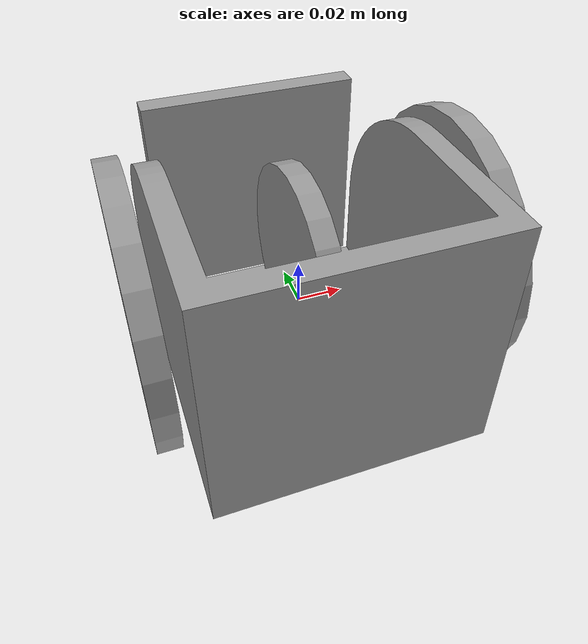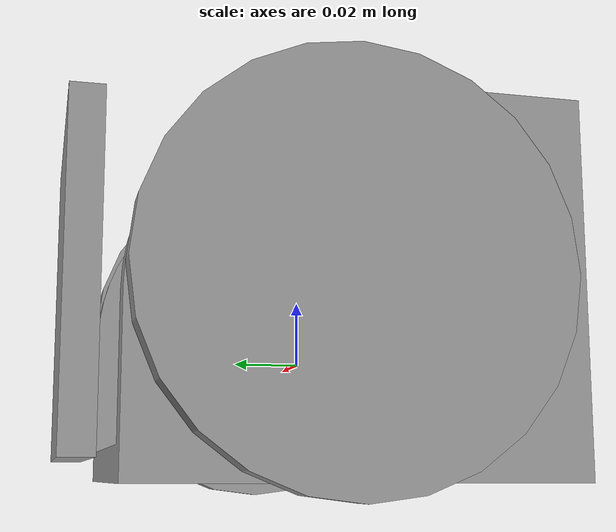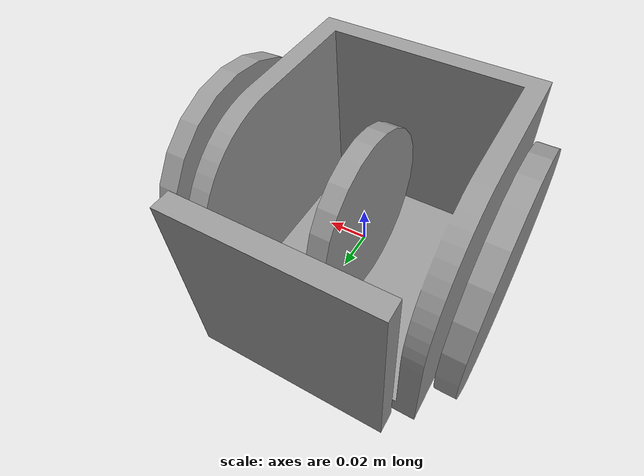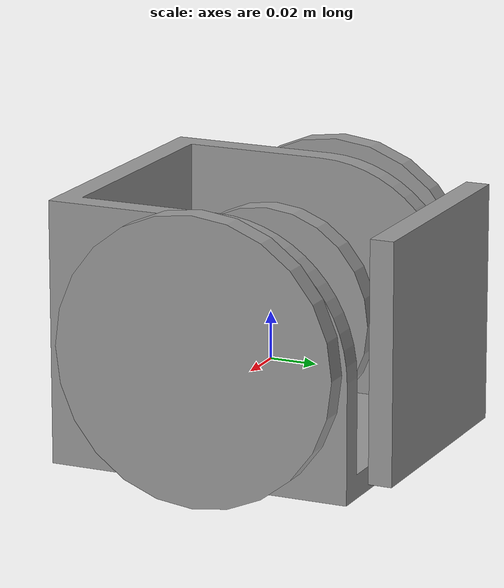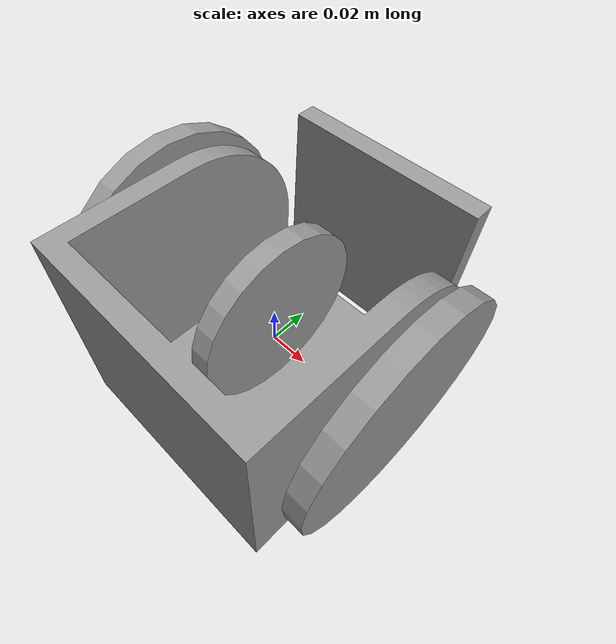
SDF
<?xml version='1.0'?>
<sdf version='1.6'>
  <model name='ditto3'>
    <link name='body'>
      <inertial>
        <mass>5</mass>
        <inertia>
          <ixx>0.166667</ixx>
          <ixy>0</ixy>
          <ixz>0</ixz>
          <iyy>0.166667</iyy>
          <iyz>0</iyz>
          <izz>0.166667</izz>
        </inertia>
        <pose frame=''>0 0 0 0 -0 0</pose>
      </inertial>
      <pose frame=''>0 -0 -0.036667 0 -0 0</pose>
      <gravity>1</gravity>
      <self_collide>0</self_collide>
      <kinematic>0</kinematic>
      <enable_wind>0</enable_wind>
      <visual name='visual'>
        <pose frame=''>0 0 0 0 -0 0</pose>
        <geometry>
          <mesh>
            <uri>/home/xtreme/catkin_ws/src/Graduation CADs/OneDrive-2019-11-22/bodyCorrected.obj</uri>
            <scale>0.001 0.001 0.001</scale>
          </mesh>
        </geometry>
        <material>
          <lighting>1</lighting>
          <script>
            <uri>file://media/materials/scripts/gazebo.material</uri>
            <name>Gazebo/Grey</name>
          </script>
          <shader type='pixel'>
            <normal_map>__default__</normal_map>
          </shader>
          <ambient>0.3 0.3 0.3 1</ambient>
          <diffuse>0.7 0.7 0.7 1</diffuse>
          <specular>0.01 0.01 0.01 1</specular>
          <emissive>0 0 0 1</emissive>
        </material>
        <transparency>0</transparency>
        <cast_shadows>1</cast_shadows>
      </visual>
      <collision name='collision'>
        <laser_retro>0</laser_retro>
        <max_contacts>10</max_contacts>
        <pose frame=''>0 0 0 0 -0 0</pose>
        <geometry>
          <mesh>
            <uri>/home/xtreme/catkin_ws/src/Graduation CADs/OneDrive-2019-11-22/bodyCorrected.obj</uri>
            <scale>0.001 0.001 0.001</scale>
          </mesh>
        </geometry>
        <surface>
          <friction>
            <ode>
              <mu>1</mu>
              <mu2>1</mu2>
              <fdir1>0 0 0</fdir1>
              <slip1>0</slip1>
              <slip2>0</slip2>
            </ode>
            <torsional>
              <coefficient>1</coefficient>
              <patch_radius>0</patch_radius>
              <surface_radius>0</surface_radius>
              <use_patch_radius>1</use_patch_radius>
              <ode>
                <slip>0</slip>
              </ode>
            </torsional>
          </friction>
          <bounce>
            <restitution_coefficient>0</restitution_coefficient>
            <threshold>1e+06</threshold>
          </bounce>
          <contact>
            <collide_without_contact>0</collide_without_contact>
            <collide_without_contact_bitmask>1</collide_without_contact_bitmask>
            <collide_bitmask>1</collide_bitmask>
            <ode>
              <soft_cfm>0</soft_cfm>
              <soft_erp>0.2</soft_erp>
              <kp>1e+13</kp>
              <kd>1</kd>
              <max_vel>0.01</max_vel>
              <min_depth>0</min_depth>
            </ode>
            <bullet>
              <split_impulse>1</split_impulse>
              <split_impulse_penetration_threshold>-0.01</split_impulse_penetration_threshold>
              <soft_cfm>0</soft_cfm>
              <soft_erp>0.2</soft_erp>
              <kp>1e+13</kp>
              <kd>1</kd>
            </bullet>
          </contact>
        </surface>
      </collision>
    </link>
    <link name='left_wheel'>
      <inertial>
        <mass>0.5</mass>
        <inertia>
          <ixx>0.145833</ixx>
          <ixy>0</ixy>
          <ixz>0</ixz>
          <iyy>0.145833</iyy>
          <iyz>0</iyz>
          <izz>0.125</izz>
        </inertia>
        <pose frame=''>0 0 0 0 -0 0</pose>
      </inertial>
      <pose frame=''>0.07 -0 0.018333 1.5707 0 1.5707</pose>
      <gravity>1</gravity>
      <self_collide>0</self_collide>
      <kinematic>0</kinematic>
      <enable_wind>0</enable_wind>
      <visual name='visual'>
        <pose frame=''>0 0 0 0 -0 0</pose>
        <geometry>
          <cylinder>
            <radius>0.06</radius>
            <length>0.01</length>
          </cylinder>
        </geometry>
        <material>
          <lighting>1</lighting>
          <script>
            <uri>file://media/materials/scripts/gazebo.material</uri>
            <name>Gazebo/Grey</name>
          </script>
          <shader type='pixel'>
            <normal_map>__default__</normal_map>
          </shader>
          <ambient>0.3 0.3 0.3 1</ambient>
          <diffuse>0.7 0.7 0.7 1</diffuse>
          <specular>0.01 0.01 0.01 1</specular>
          <emissive>0 0 0 1</emissive>
        </material>
        <transparency>0</transparency>
        <cast_shadows>1</cast_shadows>
      </visual>
      <collision name='collision'>
        <laser_retro>0</laser_retro>
        <max_contacts>10</max_contacts>
        <pose frame=''>0 0 0 0 -0 0</pose>
        <geometry>
          <cylinder>
            <radius>0.06</radius>
            <length>0.01</length>
          </cylinder>
        </geometry>
        <surface>
          <friction>
            <ode>
              <mu>1</mu>
              <mu2>1</mu2>
              <fdir1>0 0 0</fdir1>
              <slip1>0</slip1>
              <slip2>0</slip2>
            </ode>
            <torsional>
              <coefficient>1</coefficient>
              <patch_radius>0</patch_radius>
              <surface_radius>0</surface_radius>
              <use_patch_radius>1</use_patch_radius>
              <ode>
                <slip>0</slip>
              </ode>
            </torsional>
          </friction>
          <bounce>
            <restitution_coefficient>0</restitution_coefficient>
            <threshold>1e+06</threshold>
          </bounce>
          <contact>
            <collide_without_contact>0</collide_without_contact>
            <collide_without_contact_bitmask>1</collide_without_contact_bitmask>
            <collide_bitmask>1</collide_bitmask>
            <ode>
              <soft_cfm>0</soft_cfm>
              <soft_erp>0.2</soft_erp>
              <kp>1e+13</kp>
              <kd>1</kd>
              <max_vel>0.01</max_vel>
              <min_depth>0</min_depth>
            </ode>
            <bullet>
              <split_impulse>1</split_impulse>
              <split_impulse_penetration_threshold>-0.01</split_impulse_penetration_threshold>
              <soft_cfm>0</soft_cfm>
              <soft_erp>0.2</soft_erp>
              <kp>1e+13</kp>
              <kd>1</kd>
            </bullet>
          </contact>
        </surface>
      </collision>
    </link>
    <link name='mover_link'>
      <inertial>
        <mass>0.5</mass>
        <inertia>
          <ixx>0.145833</ixx>
          <ixy>0</ixy>
          <ixz>0</ixz>
          <iyy>0.145833</iyy>
          <iyz>0</iyz>
          <izz>0.125</izz>
        </inertia>
        <pose frame=''>0 0 0 0 -0 0</pose>
      </inertial>
      <pose frame=''>0 -0 0.02 3.14159 1.56989 3.14159</pose>
      <gravity>1</gravity>
      <self_collide>0</self_collide>
      <kinematic>0</kinematic>
      <enable_wind>0</enable_wind>
      <visual name='visual'>
        <pose frame=''>0 0 0 0 -0 0</pose>
        <geometry>
          <cylinder>
            <radius>0.045</radius>
            <length>0.01</length>
          </cylinder>
        </geometry>
        <material>
          <lighting>1</lighting>
          <script>
            <uri>file://media/materials/scripts/gazebo.material</uri>
            <name>Gazebo/Grey</name>
          </script>
          <shader type='pixel'>
            <normal_map>__default__</normal_map>
          </shader>
          <ambient>0.3 0.3 0.3 1</ambient>
          <diffuse>0.7 0.7 0.7 1</diffuse>
          <specular>0.01 0.01 0.01 1</specular>
          <emissive>0 0 0 1</emissive>
        </material>
        <transparency>0</transparency>
        <cast_shadows>1</cast_shadows>
      </visual>
      <collision name='collision'>
        <laser_retro>0</laser_retro>
        <max_contacts>10</max_contacts>
        <pose frame=''>0 0 0 0 -0 0</pose>
        <geometry>
          <cylinder>
            <radius>0.045</radius>
            <length>0.01</length>
          </cylinder>
        </geometry>
        <surface>
          <friction>
            <ode>
              <mu>1</mu>
              <mu2>1</mu2>
              <fdir1>0 0 0</fdir1>
              <slip1>0</slip1>
              <slip2>0</slip2>
            </ode>
            <torsional>
              <coefficient>1</coefficient>
              <patch_radius>0</patch_radius>
              <surface_radius>0</surface_radius>
              <use_patch_radius>1</use_patch_radius>
              <ode>
                <slip>0</slip>
              </ode>
            </torsional>
          </friction>
          <bounce>
            <restitution_coefficient>0</restitution_coefficient>
            <threshold>1e+06</threshold>
          </bounce>
          <contact>
            <collide_without_contact>0</collide_without_contact>
            <collide_without_contact_bitmask>1</collide_without_contact_bitmask>
            <collide_bitmask>1</collide_bitmask>
            <ode>
              <soft_cfm>0</soft_cfm>
              <soft_erp>0.2</soft_erp>
              <kp>1e+13</kp>
              <kd>1</kd>
              <max_vel>0.01</max_vel>
              <min_depth>0</min_depth>
            </ode>
            <bullet>
              <split_impulse>1</split_impulse>
              <split_impulse_penetration_threshold>-0.01</split_impulse_penetration_threshold>
              <soft_cfm>0</soft_cfm>
              <soft_erp>0.2</soft_erp>
              <kp>1e+13</kp>
              <kd>1</kd>
            </bullet>
          </contact>
        </surface>
      </collision>
    </link>
    <link name='front_face'>
      <inertial>
        <mass>0.5</mass>
        <inertia>
          <ixx>0.166667</ixx>
          <ixy>0</ixy>
          <ixz>0</ixz>
          <iyy>0.166667</iyy>
          <iyz>0</iyz>
          <izz>0.166667</izz>
        </inertia>
        <pose frame=''>0 0 0 0 -0 0</pose>
      </inertial>
      <pose frame=''>-0 0.07 0.02 -1.9e-05 -2e-06 -2.4e-05</pose>
      <gravity>1</gravity>
      <self_collide>0</self_collide>
      <kinematic>0</kinematic>
      <enable_wind>0</enable_wind>
      <visual name='visual'>
        <pose frame=''>0 0 0 0 -0 0</pose>
        <geometry>
          <box>
            <size>0.1 0.01 0.1</size>
          </box>
        </geometry>
        <material>
          <lighting>1</lighting>
          <script>
            <uri>file://media/materials/scripts/gazebo.material</uri>
            <name>Gazebo/Grey</name>
          </script>
          <shader type='pixel'>
            <normal_map>__default__</normal_map>
          </shader>
          <ambient>0.3 0.3 0.3 1</ambient>
          <diffuse>0.7 0.7 0.7 1</diffuse>
          <specular>0.01 0.01 0.01 1</specular>
          <emissive>0 0 0 1</emissive>
        </material>
        <transparency>0</transparency>
        <cast_shadows>1</cast_shadows>
      </visual>
      <collision name='box_collision'>
        <laser_retro>0</laser_retro>
        <max_contacts>10</max_contacts>
        <pose frame=''>0 0 0 0 -0 0</pose>
        <geometry>
          <box>
            <size>0.1 0.01 0.1</size>
          </box>
        </geometry>
        <surface>
          <friction>
            <ode>
              <mu>1</mu>
              <mu2>1</mu2>
              <fdir1>0 0 0</fdir1>
              <slip1>0</slip1>
              <slip2>0</slip2>
            </ode>
            <torsional>
              <coefficient>1</coefficient>
              <patch_radius>0</patch_radius>
              <surface_radius>0</surface_radius>
              <use_patch_radius>1</use_patch_radius>
              <ode>
                <slip>0</slip>
              </ode>
            </torsional>
          </friction>
          <bounce>
            <restitution_coefficient>0</restitution_coefficient>
            <threshold>1e+06</threshold>
          </bounce>
          <contact>
            <collide_without_contact>0</collide_without_contact>
            <collide_without_contact_bitmask>1</collide_without_contact_bitmask>
            <collide_bitmask>1</collide_bitmask>
            <ode>
              <soft_cfm>0</soft_cfm>
              <soft_erp>0.2</soft_erp>
              <kp>1e+13</kp>
              <kd>1</kd>
              <max_vel>0.01</max_vel>
              <min_depth>0</min_depth>
            </ode>
            <bullet>
              <split_impulse>1</split_impulse>
              <split_impulse_penetration_threshold>-0.01</split_impulse_penetration_threshold>
              <soft_cfm>0</soft_cfm>
              <soft_erp>0.2</soft_erp>
              <kp>1e+13</kp>
              <kd>1</kd>
            </bullet>
          </contact>
        </surface>
      </collision>
      <sensor name='my_plugin' type='contact'>
          <plugin name="ContactPlugin" filename="libcontact.so"/>
          <contact>
            <collision>box_collision</collision>
          </contact>
          <update_rate> 5 </update_rate>
      </sensor>
    </link>
    <link name='right_wheel'>
      <inertial>
        <mass>0.5</mass>
        <inertia>
          <ixx>0.145833</ixx>
          <ixy>0</ixy>
          <ixz>0</ixz>
          <iyy>0.145833</iyy>
          <iyz>0</iyz>
          <izz>0.125</izz>
        </inertia>
        <pose frame=''>0 0 0 0 -0 0</pose>
      </inertial>
      <pose frame=''>-0.07 -0 0.018333 1.5707 0 1.5707</pose>
      <gravity>1</gravity>
      <self_collide>0</self_collide>
      <kinematic>0</kinematic>
      <enable_wind>0</enable_wind>
      <visual name='visual'>
        <pose frame=''>0 0 0 0 -0 0</pose>
        <geometry>
          <cylinder>
            <radius>0.06</radius>
            <length>0.01</length>
          </cylinder>
        </geometry>
        <material>
          <lighting>1</lighting>
          <script>
            <uri>file://media/materials/scripts/gazebo.material</uri>
            <name>Gazebo/Grey</name>
          </script>
          <shader type='pixel'>
            <normal_map>__default__</normal_map>
          </shader>
          <ambient>0.3 0.3 0.3 1</ambient>
          <diffuse>0.7 0.7 0.7 1</diffuse>
          <specular>0.01 0.01 0.01 1</specular>
          <emissive>0 0 0 1</emissive>
        </material>
        <transparency>0</transparency>
        <cast_shadows>1</cast_shadows>
      </visual>
      <collision name='collision'>
        <laser_retro>0</laser_retro>
        <max_contacts>10</max_contacts>
        <pose frame=''>0 0 0 0 -0 0</pose>
        <geometry>
          <cylinder>
            <radius>0.06</radius>
            <length>0.01</length>
          </cylinder>
        </geometry>
        <surface>
          <friction>
            <ode>
              <mu>1</mu>
              <mu2>1</mu2>
              <fdir1>0 0 0</fdir1>
              <slip1>0</slip1>
              <slip2>0</slip2>
            </ode>
            <torsional>
              <coefficient>1</coefficient>
              <patch_radius>0</patch_radius>
              <surface_radius>0</surface_radius>
              <use_patch_radius>1</use_patch_radius>
              <ode>
                <slip>0</slip>
              </ode>
            </torsional>
          </friction>
          <bounce>
            <restitution_coefficient>0</restitution_coefficient>
            <threshold>1e+06</threshold>
          </bounce>
          <contact>
            <collide_without_contact>0</collide_without_contact>
            <collide_without_contact_bitmask>1</collide_without_contact_bitmask>
            <collide_bitmask>1</collide_bitmask>
            <ode>
              <soft_cfm>0</soft_cfm>
              <soft_erp>0.2</soft_erp>
              <kp>1e+13</kp>
              <kd>1</kd>
              <max_vel>0.01</max_vel>
              <min_depth>0</min_depth>
            </ode>
            <bullet>
              <split_impulse>1</split_impulse>
              <split_impulse_penetration_threshold>-0.01</split_impulse_penetration_threshold>
              <soft_cfm>0</soft_cfm>
              <soft_erp>0.2</soft_erp>
              <kp>1e+13</kp>
              <kd>1</kd>
            </bullet>
          </contact>
        </surface>
      </collision>
    </link>
    <joint name='face_mover_joint' type='revolute'>
      <parent>body</parent>
      <child>mover_link</child>
      <pose frame=''>0 0 0 0 -0 0</pose>
      <axis>
        <xyz>0 0 1</xyz>
        <use_parent_model_frame>0</use_parent_model_frame>
        <limit>
          <lower>-1.79769e+308</lower>
          <upper>1.79769e+308</upper>
          <effort>-1</effort>
          <velocity>-1</velocity>
        </limit>
        <dynamics>
          <spring_reference>0</spring_reference>
          <spring_stiffness>0</spring_stiffness>
          <damping>0</damping>
        </dynamics>
      </axis>
      <physics>
        <ode>
          <limit>
            <cfm>0</cfm>
            <erp>0.2</erp>
          </limit>
          <suspension>
            <cfm>0</cfm>
            <erp>0.2</erp>
          </suspension>
        </ode>
      </physics>
    </joint>
    <joint name='left_wheel_joint' type='revolute'>
      <parent>body</parent>
      <child>left_wheel</child>
      <pose frame=''>0 0 0 0 -0 0</pose>
      <axis>
        <xyz>0 0 1</xyz>
        <use_parent_model_frame>0</use_parent_model_frame>
        <limit>
          <lower>-1.79769e+308</lower>
          <upper>1.79769e+308</upper>
          <effort>-1</effort>
          <velocity>-1</velocity>
        </limit>
        <dynamics>
          <spring_reference>0</spring_reference>
          <spring_stiffness>0</spring_stiffness>
          <damping>0</damping>
          <friction>0</friction>
        </dynamics>
      </axis>
      <physics>
        <ode>
          <limit>
            <cfm>0</cfm>
            <erp>0.2</erp>
          </limit>
          <suspension>
            <cfm>0</cfm>
            <erp>0.2</erp>
          </suspension>
        </ode>
      </physics>
    </joint>
    <joint name='fixed_joint' type='fixed'>
      <parent>mover_link</parent>
      <child>front_face</child>
      <pose frame=''>0 0 0 0 -0 0</pose>
      <physics>
        <ode>
          <limit>
            <cfm>0</cfm>
            <erp>0.2</erp>
          </limit>
          <suspension>
            <cfm>0</cfm>
            <erp>0.2</erp>
          </suspension>
        </ode>
      </physics>
    </joint>
    <joint name='right_wheel_joint' type='revolute'>
      <parent>body</parent>
      <child>right_wheel</child>
      <pose frame=''>0 0 0 0 -0 0</pose>
      <axis>
        <xyz>0 0 1</xyz>
        <use_parent_model_frame>0</use_parent_model_frame>
        <limit>
          <lower>-1.79769e+308</lower>
          <upper>1.79769e+308</upper>
          <effort>-1</effort>
          <velocity>-1</velocity>
        </limit>
        <dynamics>
          <spring_reference>0</spring_reference>
          <spring_stiffness>0</spring_stiffness>
          <damping>0</damping>
          <friction>0</friction>
        </dynamics>
      </axis>
      <physics>
        <ode>
          <limit>
            <cfm>0</cfm>
            <erp>0.2</erp>
          </limit>
          <suspension>
            <cfm>0</cfm>
            <erp>0.2</erp>
          </suspension>
        </ode>
      </physics>
    </joint>
    <static>0</static>
    <allow_auto_disable>1</allow_auto_disable>
  <plugin name="my_speed_controller_plugin" filename="libmy_speed_controller_plugin.so">
		<namespace_model>GPabstractV2</namespace_model>
		<activate_pid_control>no</activate_pid_control>
		<wheel_kp>0.1</wheel_kp>
		<wheel_ki>0.0</wheel_ki>
		<wheel_kd>0.0</wheel_kd>
	</plugin>
  </model>
</sdf>
